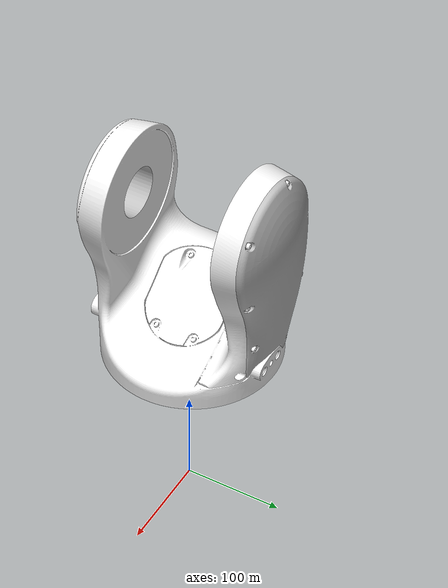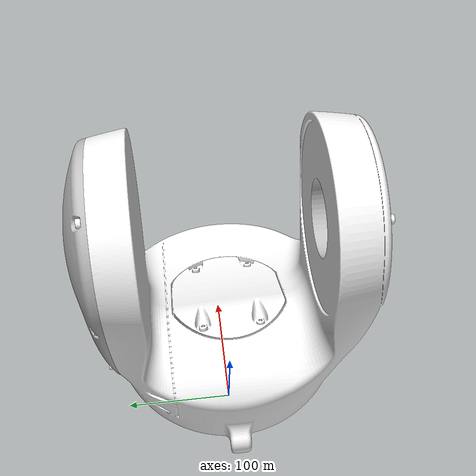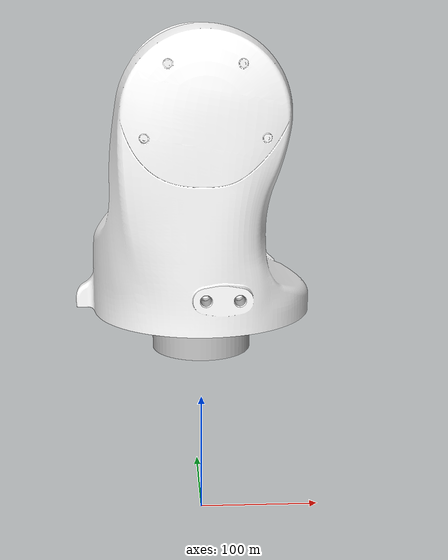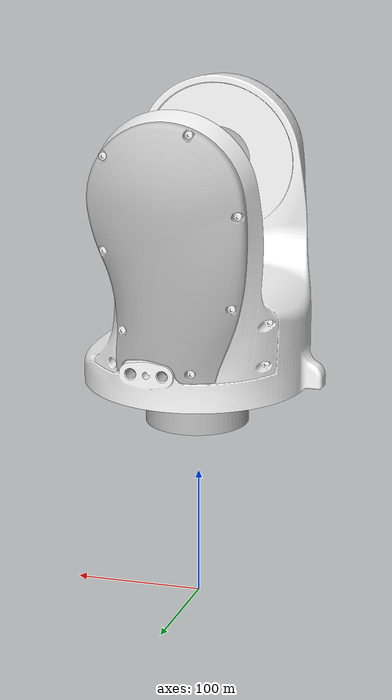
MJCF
<mujoco model="J1">
  <default>
    <default class="visual">
      <geom group="2" type="mesh" contype="0" conaffinity="0"/>
    </default>
    <default class="collision">
      <geom group="3" type="mesh"/>
    </default>
  </default>
  <asset>
    <material name="255,255,255" specular="0.5" shininess="0.5" rgba="1.000000 1.000000 1.000000 1.0"/>
    <material name="189,189,189" specular="0.5" shininess="0.5" rgba="0.741176 0.741176 0.741176 1.0"/>
    <mesh file="J1_0.obj"/>
    <mesh file="J1_1.obj"/>
  </asset>
  <worldbody>
    <body name="J1">
      <geom mesh="J1_0" material="189,189,189" class="visual"/>
      <geom mesh="J1_1" material="255,255,255" class="visual"/>
      <geom mesh="J1_0" class="collision"/>
      <geom mesh="J1_1" class="collision"/>
    </body>
  </worldbody>
</mujoco>
